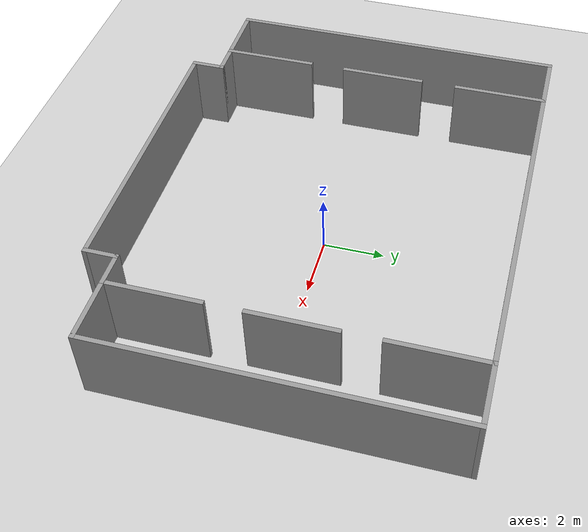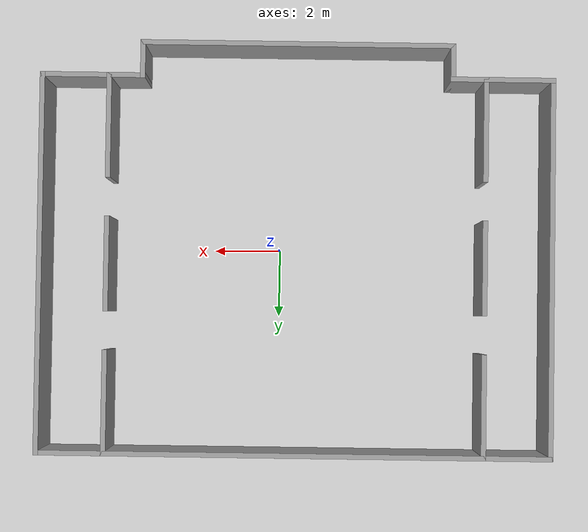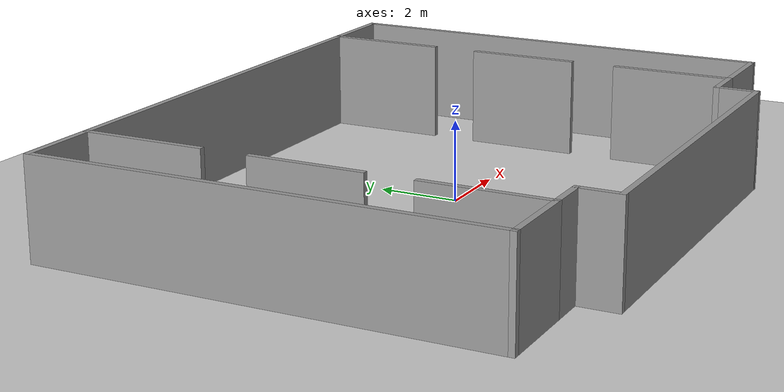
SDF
<sdf version="1.7">
 <world name="default">
  <light name="sun" type="directional">
   <pose>0 0 10 0 -0 0</pose>
   <diffuse>0.8 0.8 0.8 1</diffuse>
   <specular>0.2 0.2 0.2 1</specular>
   <attenuation>
    <range>1000</range>
    <constant>0.9</constant>
    <linear>0.01</linear>
    <quadratic>0.001</quadratic>
   </attenuation>
   <direction>-0.5 0.1 -0.9</direction>
   <spot><inner_angle>0</inner_angle><outer_angle>0</outer_angle><falloff>0</falloff></spot>
  </light>
  <model name="ground_plane">
   <static>1</static>
   <link name="link">
    <collision name="collision">
     <geometry><plane><normal>0 0 1</normal><size>100 100</size></plane></geometry>
     <surface>
      <contact><collide_bitmask>65535</collide_bitmask></contact>
      <friction><ode><mu>100</mu><mu2>50</mu2></ode></friction>
     </surface>
    </collision>
    <visual name="visual">
     <cast_shadows>0</cast_shadows>
     <geometry><plane><normal>0 0 1</normal><size>100 100</size></plane></geometry>
     <material>
      <script><uri>file://media/materials/scripts/gazebo.material</uri><name>Gazebo/Grey</name></script>
     </material>
    </visual>
   </link>
  </model>
  <gravity>0 0 -9.81</gravity>
  <magnetic_field>6e-06 2.3e-05 -4.2e-05</magnetic_field>
  <atmosphere type="adiabatic"/>
  <physics type="ode">
   <max_step_size>0.001</max_step_size>
   <real_time_factor>1</real_time_factor>
   <real_time_update_rate>1000</real_time_update_rate>
  </physics>
  <scene><ambient>0.4 0.4 0.4 1</ambient><background>0.7 0.7 0.7 1</background><shadows>1</shadows></scene>
  <spherical_coordinates>
   <surface_model>EARTH_WGS84</surface_model>
   <latitude_deg>0</latitude_deg>
   <longitude_deg>0</longitude_deg>
   <elevation>0</elevation>
   <heading_deg>0</heading_deg>
  </spherical_coordinates>
  <model name="updated_warehouse_model">
   <pose>-0.5 0 0 0 -0 0</pose>
   <link name="Wall_11">
    <collision name="Wall_11_Collision">
     <geometry><box><size>2.85 0.15 2.5</size></box></geometry>
     <pose>0 0 1.25 0 -0 0</pose>
    </collision>
    <visual name="Wall_11_Visual">
     <pose>0 0 1.25 0 -0 0</pose>
     <geometry><box><size>2.85 0.15 2.5</size></box></geometry>
     <material>
      <script><uri>file://media/materials/scripts/gazebo.material</uri><name>Gazebo/Grey</name></script>
      <ambient>1 1 1 1</ambient>
     </material>
     <meta><layer>0</layer></meta>
    </visual>
    <pose>-5.65 0.5 0 0 -0 1.5708</pose>
   </link>
   <link name="Wall_18">
    <collision name="Wall_18_Collision">
     <geometry><box><size>2.15 0.15 2.5</size></box></geometry>
     <pose>0 0 1.25 0 -0 0</pose>
    </collision>
    <visual name="Wall_18_Visual">
     <pose>0 0 1.25 0 -0 0</pose>
     <geometry><box><size>2.15 0.15 2.5</size></box></geometry>
     <material>
      <script><uri>file://media/materials/scripts/gazebo.material</uri><name>Gazebo/Grey</name></script>
      <ambient>1 1 1 1</ambient>
     </material>
     <meta><layer>0</layer></meta>
    </visual>
    <pose>-6.65 -5.15 0 0 -0 3.14159</pose>
   </link>
   <link name="Wall_19">
    <collision name="Wall_19_Collision">
     <geometry><box><size>11.45 0.15 2.5</size></box></geometry>
     <pose>0 0 1.25 0 -0 0</pose>
    </collision>
    <visual name="Wall_19_Visual">
     <pose>0 0 1.25 0 -0 0</pose>
     <geometry><box><size>11.45 0.15 2.5</size></box></geometry>
     <material>
      <script><uri>file://media/materials/scripts/gazebo.material</uri><name>Gazebo/Grey</name></script>
      <ambient>1 1 1 1</ambient>
     </material>
     <meta><layer>0</layer></meta>
    </visual>
    <pose>-7.65 0.5 0 0 -0 1.5708</pose>
   </link>
   <link name="Wall_21">
    <collision name="Wall_21_Collision">
     <geometry><box><size>2.15 0.15 2.5</size></box></geometry>
     <pose>0 0 1.25 0 -0 0</pose>
    </collision>
    <visual name="Wall_21_Visual">
     <pose>0 0 1.25 0 -0 0</pose>
     <geometry><box><size>2.15 0.15 2.5</size></box></geometry>
     <material>
      <script><uri>file://media/materials/scripts/gazebo.material</uri><name>Gazebo/Grey</name></script>
      <ambient>1 1 1 1</ambient>
     </material>
     <meta><layer>0</layer></meta>
    </visual>
    <pose>-6.65 6.15 0 0 -0 0</pose>
   </link>
   <link name="Wall_24">
    <collision name="Wall_24_Collision">
     <geometry><box><size>3.15 0.15 2.5</size></box></geometry>
     <pose>0 0 1.25 0 -0 0</pose>
    </collision>
    <visual name="Wall_24_Visual">
     <pose>0 0 1.25 0 -0 0</pose>
     <geometry><box><size>3.15 0.15 2.5</size></box></geometry>
     <material>
      <script><uri>file://media/materials/scripts/gazebo.material</uri><name>Gazebo/Grey</name></script>
      <ambient>1 1 1 1</ambient>
     </material>
     <meta><layer>0</layer></meta>
    </visual>
    <pose>5.65 -3.65 0 0 -0 1.5708</pose>
   </link>
   <link name="Wall_26">
    <collision name="Wall_26_Collision">
     <geometry><box><size>3.15 0.15 2.5</size></box></geometry>
     <pose>0 0 1.25 0 -0 0</pose>
    </collision>
    <visual name="Wall_26_Visual">
     <pose>0 0 1.25 0 -0 0</pose>
     <geometry><box><size>3.15 0.15 2.5</size></box></geometry>
     <material>
      <script><uri>file://media/materials/scripts/gazebo.material</uri><name>Gazebo/Grey</name></script>
      <ambient>1 1 1 1</ambient>
     </material>
     <meta><layer>0</layer></meta>
    </visual>
    <pose>5.65 4.65 0 0 -0 -1.5708</pose>
   </link>
   <link name="Wall_28">
    <collision name="Wall_28_Collision">
     <geometry><box><size>2.85 0.15 2.5</size></box></geometry>
     <pose>0 0 1.25 0 -0 0</pose>
    </collision>
    <visual name="Wall_28_Visual">
     <pose>0 0 1.25 0 -0 0</pose>
     <geometry><box><size>2.85 0.15 2.5</size></box></geometry>
     <material>
      <script><uri>file://media/materials/scripts/gazebo.material</uri><name>Gazebo/Grey</name></script>
      <ambient>1 1 1 1</ambient>
     </material>
     <meta><layer>0</layer></meta>
    </visual>
    <pose>5.65 0.5 0 0 -0 1.5708</pose>
   </link>
   <link name="Wall_30">
    <collision name="Wall_30_Collision">
     <geometry><box><size>2.15 0.15 2.5</size></box></geometry>
     <pose>0 0 1.25 0 -0 0</pose>
    </collision>
    <visual name="Wall_30_Visual">
     <pose>0 0 1.25 0 -0 0</pose>
     <geometry><box><size>2.15 0.15 2.5</size></box></geometry>
     <material>
      <script><uri>file://media/materials/scripts/gazebo.material</uri><name>Gazebo/Grey</name></script>
      <ambient>1 1 1 1</ambient>
     </material>
     <meta><layer>0</layer></meta>
    </visual>
    <pose>6.65 -5.15 0 0 -0 0</pose>
   </link>
   <link name="Wall_32">
    <collision name="Wall_32_Collision">
     <geometry><box><size>11.45 0.15 2.5</size></box></geometry>
     <pose>0 0 1.25 0 -0 0</pose>
    </collision>
    <visual name="Wall_32_Visual">
     <pose>0 0 1.25 0 -0 0</pose>
     <geometry><box><size>11.45 0.15 2.5</size></box></geometry>
     <material>
      <script><uri>file://media/materials/scripts/gazebo.material</uri><name>Gazebo/Grey</name></script>
      <ambient>1 1 1 1</ambient>
     </material>
     <meta><layer>0</layer></meta>
    </visual>
    <pose>7.65 0.5 0 0 -0 1.5708</pose>
   </link>
   <link name="Wall_34">
    <collision name="Wall_34_Collision">
     <geometry><box><size>2.15 0.15 2.5</size></box></geometry>
     <pose>0 0 1.25 0 -0 0</pose>
    </collision>
    <visual name="Wall_34_Visual">
     <pose>0 0 1.25 0 -0 0</pose>
     <geometry><box><size>2.15 0.15 2.5</size></box></geometry>
     <material>
      <script><uri>file://media/materials/scripts/gazebo.material</uri><name>Gazebo/Grey</name></script>
      <ambient>1 1 1 1</ambient>
     </material>
     <meta><layer>0</layer></meta>
    </visual>
    <pose>6.65 6.15 0 0 -0 3.14159</pose>
   </link>
   <link name="Wall_36">
    <collision name="Wall_36_Collision">
     <geometry><box><size>1.15 0.15 2.5</size></box></geometry>
     <pose>0 0 1.25 0 -0 0</pose>
    </collision>
    <visual name="Wall_36_Visual">
     <pose>0 0 1.25 0 -0 0</pose>
     <geometry><box><size>1.15 0.15 2.5</size></box></geometry>
     <material>
      <script><uri>file://media/materials/scripts/gazebo.material</uri><name>Gazebo/Grey</name></script>
      <ambient>1 1 1 1</ambient>
     </material>
     <meta><layer>0</layer></meta>
    </visual>
    <pose>-5.15 -5.15 0 0 -0 0</pose>
   </link>
   <link name="Wall_38">
    <collision name="Wall_38_Collision">
     <geometry><box><size>1.15 0.15 2.5</size></box></geometry>
     <pose>0 0 1.25 0 -0 0</pose>
    </collision>
    <visual name="Wall_38_Visual">
     <pose>0 0 1.25 0 -0 0</pose>
     <geometry><box><size>1.15 0.15 2.5</size></box></geometry>
     <material>
      <script><uri>file://media/materials/scripts/gazebo.material</uri><name>Gazebo/Grey</name></script>
      <ambient>1 1 1 1</ambient>
     </material>
     <meta><layer>0</layer></meta>
    </visual>
    <pose>-4.65 -5.65 0 0 -0 -1.5708</pose>
   </link>
   <link name="Wall_4">
    <collision name="Wall_4_Collision">
     <geometry><box><size>11.45 0.15 2.5</size></box></geometry>
     <pose>0 0 1.25 0 -0 0</pose>
    </collision>
    <visual name="Wall_4_Visual">
     <pose>0 0 1.25 0 -0 0</pose>
     <geometry><box><size>11.45 0.15 2.5</size></box></geometry>
     <material>
      <script><uri>file://media/materials/scripts/gazebo.material</uri><name>Gazebo/Grey</name></script>
      <ambient>1 1 1 1</ambient>
     </material>
     <meta><layer>0</layer></meta>
    </visual>
    <pose>0 6.15 0 0 -0 0</pose>
   </link>
   <link name="Wall_43">
    <collision name="Wall_43_Collision">
     <geometry><box><size>1.15 0.15 2.5</size></box></geometry>
     <pose>0 0 1.25 0 -0 0</pose>
    </collision>
    <visual name="Wall_43_Visual">
     <pose>0 0 1.25 0 -0 0</pose>
     <geometry><box><size>1.15 0.15 2.5</size></box></geometry>
     <material>
      <script><uri>file://media/materials/scripts/gazebo.material</uri><name>Gazebo/Grey</name></script>
      <ambient>1 1 1 1</ambient>
     </material>
     <meta><layer>0</layer></meta>
    </visual>
    <pose>5.15 -5.15 0 0 -0 3.14159</pose>
   </link>
   <link name="Wall_45">
    <collision name="Wall_45_Collision">
     <geometry><box><size>1.15 0.15 2.5</size></box></geometry>
     <pose>0 0 1.25 0 -0 0</pose>
    </collision>
    <visual name="Wall_45_Visual">
     <pose>0 0 1.25 0 -0 0</pose>
     <geometry><box><size>1.15 0.15 2.5</size></box></geometry>
     <material>
      <script><uri>file://media/materials/scripts/gazebo.material</uri><name>Gazebo/Grey</name></script>
      <ambient>1 1 1 1</ambient>
     </material>
     <meta><layer>0</layer></meta>
    </visual>
    <pose>4.65 -5.65 0 0 -0 -1.5708</pose>
   </link>
   <link name="Wall_48">
    <collision name="Wall_48_Collision">
     <geometry><box><size>9.45 0.15 2.5</size></box></geometry>
     <pose>0 0 1.25 0 -0 0</pose>
    </collision>
    <visual name="Wall_48_Visual">
     <pose>0 0 1.25 0 -0 0</pose>
     <geometry><box><size>9.45 0.15 2.5</size></box></geometry>
     <material>
      <script><uri>file://media/materials/scripts/gazebo.material</uri><name>Gazebo/Grey</name></script>
      <ambient>1 1 1 1</ambient>
     </material>
     <meta><layer>0</layer></meta>
    </visual>
    <pose>0 -6.15 0 0 -0 0</pose>
   </link>
   <link name="Wall_6">
    <collision name="Wall_6_Collision">
     <geometry><box><size>3.15 0.15 2.5</size></box></geometry>
     <pose>0 0 1.25 0 -0 0</pose>
    </collision>
    <visual name="Wall_6_Visual">
     <pose>0 0 1.25 0 -0 0</pose>
     <geometry><box><size>3.15 0.15 2.5</size></box></geometry>
     <material>
      <script><uri>file://media/materials/scripts/gazebo.material</uri><name>Gazebo/Grey</name></script>
      <ambient>1 1 1 1</ambient>
     </material>
     <meta><layer>0</layer></meta>
    </visual>
    <pose>-5.65 -3.65 0 0 -0 1.5708</pose>
   </link>
   <link name="Wall_9">
    <collision name="Wall_9_Collision">
     <geometry><box><size>3.15 0.15 2.5</size></box></geometry>
     <pose>0 0 1.25 0 -0 0</pose>
    </collision>
    <visual name="Wall_9_Visual">
     <pose>0 0 1.25 0 -0 0</pose>
     <geometry><box><size>3.15 0.15 2.5</size></box></geometry>
     <material>
      <script><uri>file://media/materials/scripts/gazebo.material</uri><name>Gazebo/Grey</name></script>
      <ambient>1 1 1 1</ambient>
     </material>
     <meta><layer>0</layer></meta>
    </visual>
    <pose>-5.65 4.65 0 0 -0 -1.5708</pose>
   </link>
   <static>1</static>
  </model>
 </world>
</sdf>
